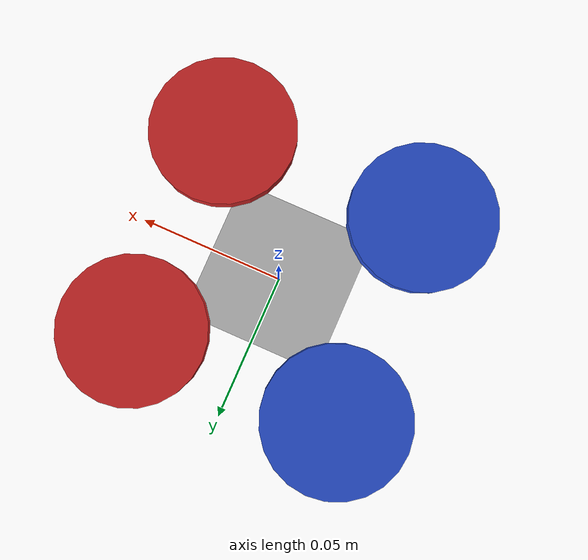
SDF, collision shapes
<sdf version='1.7'>
  <model name='crazyflie2'>
    <link name='crazyflie2/base_link'>
      <inertial>
        <pose>0 0 0 0 -0 0</pose>
        <mass>0.025</mass>
        <inertia>
          <ixx>1.65717e-05</ixx>
          <ixy>0</ixy>
          <ixz>0</ixz>
          <iyy>1.65717e-05</iyy>
          <iyz>0</iyz>
          <izz>2.92617e-05</izz>
        </inertia>
      </inertial>
      <collision name='crazyflie2/base_link_inertia_collision'>
        <pose>0 0 0 0 -0 0</pose>
        <geometry>
          <box>
            <size>0.045 0.045 0.03</size>
          </box>
        </geometry>
      </collision>
      <visual name='crazyflie2/base_link_inertia_visual'>
        <pose>0 0 0 0 -0 0</pose>
        <geometry>
          <mesh>
            <scale>1 1 1</scale>
            <uri>/home/kiko-hp-omen/RoboticPark/src/uned_crazyflie_ros_pkg/uned_crazyflie_config/model/test/crazyflie2.dae</uri>
          </mesh>
        </geometry>
      </visual>
    </link>
    <joint name='crazyflie2/imugt_joint' type='revolute'>
      <pose relative_to='crazyflie2/base_link'>0 0 0 0 -0 0</pose>
      <parent>crazyflie2/base_link</parent>
      <child>crazyflie2/imugt_link</child>
      <axis>
        <xyz>1 0 0</xyz>
        <limit>
          <lower>0</lower>
          <upper>0</upper>
          <effort>0</effort>
          <velocity>0</velocity>
        </limit>
        <dynamics>
          <spring_reference>0</spring_reference>
          <spring_stiffness>0</spring_stiffness>
        </dynamics>
      </axis>
    </joint>
    <link name='crazyflie2/imugt_link'>
      <pose relative_to='crazyflie2/imugt_joint'>0 0 0 0 -0 0</pose>
      <inertial>
        <pose>0 0 0 0 -0 0</pose>
        <mass>1e-05</mass>
        <inertia>
          <ixx>1e-05</ixx>
          <ixy>0</ixy>
          <ixz>0</ixz>
          <iyy>1e-05</iyy>
          <iyz>0</iyz>
          <izz>1e-05</izz>
        </inertia>
      </inertial>
    </link>
    <joint name='crazyflie2/odometry_sensor_joint' type='revolute'>
      <pose relative_to='crazyflie2/base_link'>0 0 0 0 -0 0</pose>
      <parent>crazyflie2/base_link</parent>
      <child>crazyflie2/odometry_sensor_link</child>
      <axis>
        <xyz>1 0 0</xyz>
        <limit>
          <lower>0</lower>
          <upper>0</upper>
          <effort>0</effort>
          <velocity>0</velocity>
        </limit>
        <dynamics>
          <spring_reference>0</spring_reference>
          <spring_stiffness>0</spring_stiffness>
        </dynamics>
      </axis>
    </joint>
    <link name='crazyflie2/odometry_sensor_link'>
      <pose relative_to='crazyflie2/odometry_sensor_joint'>0 0 0 0 -0 0</pose>
      <inertial>
        <pose>0 0 0 0 -0 0</pose>
        <mass>1e-05</mass>
        <inertia>
          <ixx>1e-05</ixx>
          <ixy>0</ixy>
          <ixz>0</ixz>
          <iyy>1e-05</iyy>
          <iyz>0</iyz>
          <izz>1e-05</izz>
        </inertia>
      </inertial>
    </link>
    <joint name='crazyflie2/odometry_sensorgt_joint' type='revolute'>
      <pose relative_to='crazyflie2/base_link'>0 0 0 0 -0 0</pose>
      <parent>crazyflie2/base_link</parent>
      <child>crazyflie2/odometry_sensorgt_link</child>
      <axis>
        <xyz>1 0 0</xyz>
        <limit>
          <lower>0</lower>
          <upper>0</upper>
          <effort>0</effort>
          <velocity>0</velocity>
        </limit>
        <dynamics>
          <spring_reference>0</spring_reference>
          <spring_stiffness>0</spring_stiffness>
        </dynamics>
      </axis>
    </joint>
    <link name='crazyflie2/odometry_sensorgt_link'>
      <pose relative_to='crazyflie2/odometry_sensorgt_joint'>0 0 0 0 -0 0</pose>
      <inertial>
        <pose>0 0 0 0 -0 0</pose>
        <mass>1e-05</mass>
        <inertia>
          <ixx>1e-05</ixx>
          <ixy>0</ixy>
          <ixz>0</ixz>
          <iyy>1e-05</iyy>
          <iyz>0</iyz>
          <izz>1e-05</izz>
        </inertia>
      </inertial>
    </link>
    <joint name='crazyflie2/rotor_0_joint' type='revolute'>
      <pose relative_to='crazyflie2/base_link'>0.032527 -0.032527 0.024 0 -0 0</pose>
      <parent>crazyflie2/base_link</parent>
      <child>crazyflie2/rotor_0</child>
      <axis>
        <xyz>0 0 1</xyz>
        <limit>
          <lower>-1e+16</lower>
          <upper>1e+16</upper>
        </limit>
        <dynamics>
          <spring_reference>0</spring_reference>
          <spring_stiffness>0</spring_stiffness>
        </dynamics>
      </axis>
    </joint>
    <link name='crazyflie2/rotor_0'>
      <pose relative_to='crazyflie2/rotor_0_joint'>0 0 0 0 -0 0</pose>
      <inertial>
        <pose>0 0 0 0 -0 0</pose>
        <mass>0.0005</mass>
        <inertia>
          <ixx>1.20833e-07</ixx>
          <ixy>0</ixy>
          <ixz>0</ixz>
          <iyy>1.07344e-06</iyy>
          <iyz>0</iyz>
          <izz>1.15677e-06</izz>
        </inertia>
      </inertial>
      <collision name='crazyflie2/rotor_0_collision'>
        <pose>0 0 0 0 -0 0</pose>
        <geometry>
          <cylinder>
            <length>0.005</length>
            <radius>0.0225</radius>
          </cylinder>
        </geometry>
        <surface>
          <contact>
            <ode/>
          </contact>
          <friction>
            <ode/>
          </friction>
        </surface>
      </collision>
      <visual name='crazyflie2/rotor_0_visual'>
        <pose>0 0 0 0 -0 0</pose>
        <geometry>
          <mesh>
            <scale>0.0225 0.0225 0.0225</scale>
            <uri>model://rotors_description/meshes/propeller_ccw.dae</uri>
          </mesh>
        </geometry>
        <material>
          <script>
            <name>Gazebo/Red</name>
            <uri>file://media/materials/scripts/gazebo.material</uri>
          </script>
        </material>
      </visual>
      <gravity>1</gravity>
      <velocity_decay/>
    </link>
    <joint name='crazyflie2/rotor_1_joint' type='revolute'>
      <pose relative_to='crazyflie2/base_link'>-0.032527 -0.032527 0.024 0 -0 0</pose>
      <parent>crazyflie2/base_link</parent>
      <child>crazyflie2/rotor_1</child>
      <axis>
        <xyz>0 0 1</xyz>
        <limit>
          <lower>-1e+16</lower>
          <upper>1e+16</upper>
        </limit>
        <dynamics>
          <spring_reference>0</spring_reference>
          <spring_stiffness>0</spring_stiffness>
        </dynamics>
      </axis>
    </joint>
    <link name='crazyflie2/rotor_1'>
      <pose relative_to='crazyflie2/rotor_1_joint'>0 0 0 0 -0 0</pose>
      <inertial>
        <pose>0 0 0 0 -0 0</pose>
        <mass>0.0005</mass>
        <inertia>
          <ixx>1.20833e-07</ixx>
          <ixy>0</ixy>
          <ixz>0</ixz>
          <iyy>1.07344e-06</iyy>
          <iyz>0</iyz>
          <izz>1.15677e-06</izz>
        </inertia>
      </inertial>
      <collision name='crazyflie2/rotor_1_collision'>
        <pose>0 0 0 0 -0 0</pose>
        <geometry>
          <cylinder>
            <length>0.005</length>
            <radius>0.0225</radius>
          </cylinder>
        </geometry>
        <surface>
          <contact>
            <ode/>
          </contact>
          <friction>
            <ode/>
          </friction>
        </surface>
      </collision>
      <visual name='crazyflie2/rotor_1_visual'>
        <pose>0 0 0 0 -0 0</pose>
        <geometry>
          <mesh>
            <scale>0.0225 0.0225 0.0225</scale>
            <uri>model://rotors_description/meshes/propeller_cw.dae</uri>
          </mesh>
        </geometry>
        <material>
          <script>
            <name>Gazebo/Blue</name>
            <uri>file://media/materials/scripts/gazebo.material</uri>
          </script>
        </material>
      </visual>
      <gravity>1</gravity>
      <velocity_decay/>
    </link>
    <joint name='crazyflie2/rotor_2_joint' type='revolute'>
      <pose relative_to='crazyflie2/base_link'>-0.032527 0.032527 0.024 0 -0 0</pose>
      <parent>crazyflie2/base_link</parent>
      <child>crazyflie2/rotor_2</child>
      <axis>
        <xyz>0 0 1</xyz>
        <limit>
          <lower>-1e+16</lower>
          <upper>1e+16</upper>
        </limit>
        <dynamics>
          <spring_reference>0</spring_reference>
          <spring_stiffness>0</spring_stiffness>
        </dynamics>
      </axis>
    </joint>
    <link name='crazyflie2/rotor_2'>
      <pose relative_to='crazyflie2/rotor_2_joint'>0 0 0 0 -0 0</pose>
      <inertial>
        <pose>0 0 0 0 -0 0</pose>
        <mass>0.0005</mass>
        <inertia>
          <ixx>1.20833e-07</ixx>
          <ixy>0</ixy>
          <ixz>0</ixz>
          <iyy>1.07344e-06</iyy>
          <iyz>0</iyz>
          <izz>1.15677e-06</izz>
        </inertia>
      </inertial>
      <collision name='crazyflie2/rotor_2_collision'>
        <pose>0 0 0 0 -0 0</pose>
        <geometry>
          <cylinder>
            <length>0.005</length>
            <radius>0.0225</radius>
          </cylinder>
        </geometry>
        <surface>
          <contact>
            <ode/>
          </contact>
          <friction>
            <ode/>
          </friction>
        </surface>
      </collision>
      <visual name='crazyflie2/rotor_2_visual'>
        <pose>0 0 0 0 -0 0</pose>
        <geometry>
          <mesh>
            <scale>0.0225 0.0225 0.0225</scale>
            <uri>model://rotors_description/meshes/propeller_ccw.dae</uri>
          </mesh>
        </geometry>
        <material>
          <script>
            <name>Gazebo/Blue</name>
            <uri>file://media/materials/scripts/gazebo.material</uri>
          </script>
        </material>
      </visual>
      <gravity>1</gravity>
      <velocity_decay/>
    </link>
    <joint name='crazyflie2/rotor_3_joint' type='revolute'>
      <pose relative_to='crazyflie2/base_link'>0.032527 0.032527 0.024 0 -0 0</pose>
      <parent>crazyflie2/base_link</parent>
      <child>crazyflie2/rotor_3</child>
      <axis>
        <xyz>0 0 1</xyz>
        <limit>
          <lower>-1e+16</lower>
          <upper>1e+16</upper>
        </limit>
        <dynamics>
          <spring_reference>0</spring_reference>
          <spring_stiffness>0</spring_stiffness>
        </dynamics>
      </axis>
    </joint>
    <link name='crazyflie2/rotor_3'>
      <pose relative_to='crazyflie2/rotor_3_joint'>0 0 0 0 -0 0</pose>
      <inertial>
        <pose>0 0 0 0 -0 0</pose>
        <mass>0.0005</mass>
        <inertia>
          <ixx>1.20833e-07</ixx>
          <ixy>0</ixy>
          <ixz>0</ixz>
          <iyy>1.07344e-06</iyy>
          <iyz>0</iyz>
          <izz>1.15677e-06</izz>
        </inertia>
      </inertial>
      <collision name='crazyflie2/rotor_3_collision'>
        <pose>0 0 0 0 -0 0</pose>
        <geometry>
          <cylinder>
            <length>0.005</length>
            <radius>0.0225</radius>
          </cylinder>
        </geometry>
        <surface>
          <contact>
            <ode/>
          </contact>
          <friction>
            <ode/>
          </friction>
        </surface>
      </collision>
      <visual name='crazyflie2/rotor_3_visual'>
        <pose>0 0 0 0 -0 0</pose>
        <geometry>
          <mesh>
            <scale>0.0225 0.0225 0.0225</scale>
            <uri>model://rotors_description/meshes/propeller_cw.dae</uri>
          </mesh>
        </geometry>
        <material>
          <script>
            <name>Gazebo/Red</name>
            <uri>file://media/materials/scripts/gazebo.material</uri>
          </script>
        </material>
      </visual>
      <gravity>1</gravity>
      <velocity_decay/>
    </link>
    <plugin name='multirotor_base_plugin' filename='librotors_gazebo_multirotor_base_plugin.so'>
      <robotNamespace>crazyflie2</robotNamespace>
      <linkName>crazyflie2/base_link</linkName>
      <rotorVelocitySlowdownSim>50</rotorVelocitySlowdownSim>
    </plugin>
    <plugin name='crazyflie2_front-right_motor_model' filename='librotors_gazebo_motor_model.so'>
      <robotNamespace>crazyflie2</robotNamespace>
      <jointName>crazyflie2/rotor_0_joint</jointName>
      <linkName>crazyflie2/rotor_0</linkName>
      <turningDirection>ccw</turningDirection>
      <timeConstantUp>0.0125</timeConstantUp>
      <timeConstantDown>0.025</timeConstantDown>
      <maxRotVelocity>2618</maxRotVelocity>
      <motorConstant>1.28192e-08</motorConstant>
      <momentConstant>0.005964552</momentConstant>
      <commandSubTopic>gazebo/command/motor_speed</commandSubTopic>
      <motorNumber>0</motorNumber>
      <rotorDragCoefficient>8.06428e-05</rotorDragCoefficient>
      <rollingMomentCoefficient>1e-06</rollingMomentCoefficient>
      <motorSpeedPubTopic>motor_speed/0</motorSpeedPubTopic>
      <rotorVelocitySlowdownSim>50</rotorVelocitySlowdownSim>
    </plugin>
    <plugin name='crazyflie2_back-right_motor_model' filename='librotors_gazebo_motor_model.so'>
      <robotNamespace>crazyflie2</robotNamespace>
      <jointName>crazyflie2/rotor_1_joint</jointName>
      <linkName>crazyflie2/rotor_1</linkName>
      <turningDirection>cw</turningDirection>
      <timeConstantUp>0.0125</timeConstantUp>
      <timeConstantDown>0.025</timeConstantDown>
      <maxRotVelocity>2618</maxRotVelocity>
      <motorConstant>1.28192e-08</motorConstant>
      <momentConstant>0.005964552</momentConstant>
      <commandSubTopic>gazebo/command/motor_speed</commandSubTopic>
      <motorNumber>1</motorNumber>
      <rotorDragCoefficient>8.06428e-05</rotorDragCoefficient>
      <rollingMomentCoefficient>1e-06</rollingMomentCoefficient>
      <motorSpeedPubTopic>motor_speed/1</motorSpeedPubTopic>
      <rotorVelocitySlowdownSim>50</rotorVelocitySlowdownSim>
    </plugin>
    <plugin name='crazyflie2_back-left_motor_model' filename='librotors_gazebo_motor_model.so'>
      <robotNamespace>crazyflie2</robotNamespace>
      <jointName>crazyflie2/rotor_2_joint</jointName>
      <linkName>crazyflie2/rotor_2</linkName>
      <turningDirection>ccw</turningDirection>
      <timeConstantUp>0.0125</timeConstantUp>
      <timeConstantDown>0.025</timeConstantDown>
      <maxRotVelocity>2618</maxRotVelocity>
      <motorConstant>1.28192e-08</motorConstant>
      <momentConstant>0.005964552</momentConstant>
      <commandSubTopic>gazebo/command/motor_speed</commandSubTopic>
      <motorNumber>2</motorNumber>
      <rotorDragCoefficient>8.06428e-05</rotorDragCoefficient>
      <rollingMomentCoefficient>1e-06</rollingMomentCoefficient>
      <motorSpeedPubTopic>motor_speed/2</motorSpeedPubTopic>
      <rotorVelocitySlowdownSim>50</rotorVelocitySlowdownSim>
    </plugin>
    <plugin name='crazyflie2_front-left_motor_model' filename='librotors_gazebo_motor_model.so'>
      <robotNamespace>crazyflie2</robotNamespace>
      <jointName>crazyflie2/rotor_3_joint</jointName>
      <linkName>crazyflie2/rotor_3</linkName>
      <turningDirection>cw</turningDirection>
      <timeConstantUp>0.0125</timeConstantUp>
      <timeConstantDown>0.025</timeConstantDown>
      <maxRotVelocity>2618</maxRotVelocity>
      <motorConstant>1.28192e-08</motorConstant>
      <momentConstant>0.005964552</momentConstant>
      <commandSubTopic>gazebo/command/motor_speed</commandSubTopic>
      <motorNumber>3</motorNumber>
      <rotorDragCoefficient>8.06428e-05</rotorDragCoefficient>
      <rollingMomentCoefficient>1e-06</rollingMomentCoefficient>
      <motorSpeedPubTopic>motor_speed/3</motorSpeedPubTopic>
      <rotorVelocitySlowdownSim>50</rotorVelocitySlowdownSim>
    </plugin>
    <plugin name='controller_interface' filename='librotors_gazebo_controller_interface.so'>
      <robotNamespace>crazyflie2</robotNamespace>
      <commandAttitudeThrustSubTopic>command/attitude</commandAttitudeThrustSubTopic>
      <commandRateThrustSubTopic>command/rate</commandRateThrustSubTopic>
      <commandMotorSpeedSubTopic>command/motor_speed</commandMotorSpeedSubTopic>
      <imuSubTopic>imu</imuSubTopic>
      <motorSpeedCommandPubTopic>gazebo/command/motor_speed</motorSpeedCommandPubTopic>
    </plugin>
    <plugin name='odometry_sensor' filename='librotors_gazebo_odometry_plugin.so'>
      <linkName>crazyflie2/odometry_sensor_link</linkName>
      <robotNamespace>crazyflie2</robotNamespace>
      <poseTopic>pose</poseTopic>
      <poseWithCovarianceTopic>pose_with_covariance</poseWithCovarianceTopic>
      <positionTopic>position</positionTopic>
      <transformTopic>transform</transformTopic>
      <odometryTopic>odometry</odometryTopic>
      <parentFrameId>world</parentFrameId>
      <childFrameId>crazyflie2/base_link</childFrameId>
      <measurementDivisor>1</measurementDivisor>
      <measurementDelay>0</measurementDelay>
      <unknownDelay>0.0</unknownDelay>
      <noiseNormalPosition>0 0 0</noiseNormalPosition>
      <noiseNormalQuaternion>0 0 0</noiseNormalQuaternion>
      <noiseNormalLinearVelocity>0 0 0</noiseNormalLinearVelocity>
      <noiseNormalAngularVelocity>0 0 0</noiseNormalAngularVelocity>
      <noiseUniformPosition>0 0 0</noiseUniformPosition>
      <noiseUniformQuaternion>0 0 0</noiseUniformQuaternion>
      <noiseUniformLinearVelocity>0 0 0</noiseUniformLinearVelocity>
      <noiseUniformAngularVelocity>0 0 0</noiseUniformAngularVelocity>
    </plugin>
    <plugin name='rotors_gazebo_imugt_plugin' filename='librotors_gazebo_imu_plugin.so'>
      <robotNamespace>crazyflie2</robotNamespace>
      <linkName>crazyflie2/imugt_link</linkName>
      <imuTopic>ground_truth/imu</imuTopic>
      <gyroscopeNoiseDensity>0.0</gyroscopeNoiseDensity>
      <measurementDivisor>1</measurementDivisor>
      <measurementDelay>0</measurementDelay>
      <gyroscopeRandomWalk>0.0</gyroscopeRandomWalk>
      <gyroscopeBiasCorrelationTime>1000.0</gyroscopeBiasCorrelationTime>
      <gyroscopeTurnOnBiasSigma>0.0</gyroscopeTurnOnBiasSigma>
      <accelerometerNoiseDensity>0.0</accelerometerNoiseDensity>
      <accelerometerRandomWalk>0.0</accelerometerRandomWalk>
      <accelerometerBiasCorrelationTime>300.0</accelerometerBiasCorrelationTime>
      <accelerometerTurnOnBiasSigma>0.0</accelerometerTurnOnBiasSigma>
    </plugin>
    <static>0</static>
    <plugin name='odometry_sensorgt' filename='librotors_gazebo_odometry_plugin.so'>
      <linkName>crazyflie2/odometry_sensorgt_link</linkName>
      <robotNamespace>crazyflie2</robotNamespace>
      <poseTopic>ground_truth/pose</poseTopic>
      <poseWithCovarianceTopic>ground_truth/pose_with_covariance</poseWithCovarianceTopic>
      <positionTopic>ground_truth/position</positionTopic>
      <transformTopic>ground_truth/transform</transformTopic>
      <odometryTopic>ground_truth/odometry</odometryTopic>
      <parentFrameId>world</parentFrameId>
      <childFrameId>crazyflie2/base_link</childFrameId>
      <measurementDivisor>1</measurementDivisor>
      <measurementDelay>0</measurementDelay>
      <unknownDelay>0.0</unknownDelay>
      <noiseNormalPosition>0 0 0</noiseNormalPosition>
      <noiseNormalQuaternion>0 0 0</noiseNormalQuaternion>
      <noiseNormalLinearVelocity>0 0 0</noiseNormalLinearVelocity>
      <noiseNormalAngularVelocity>0 0 0</noiseNormalAngularVelocity>
      <noiseUniformPosition>0 0 0</noiseUniformPosition>
      <noiseUniformQuaternion>0 0 0</noiseUniformQuaternion>
      <noiseUniformLinearVelocity>0 0 0</noiseUniformLinearVelocity>
      <noiseUniformAngularVelocity>0 0 0</noiseUniformAngularVelocity>
    </plugin>
  </model>
</sdf>
